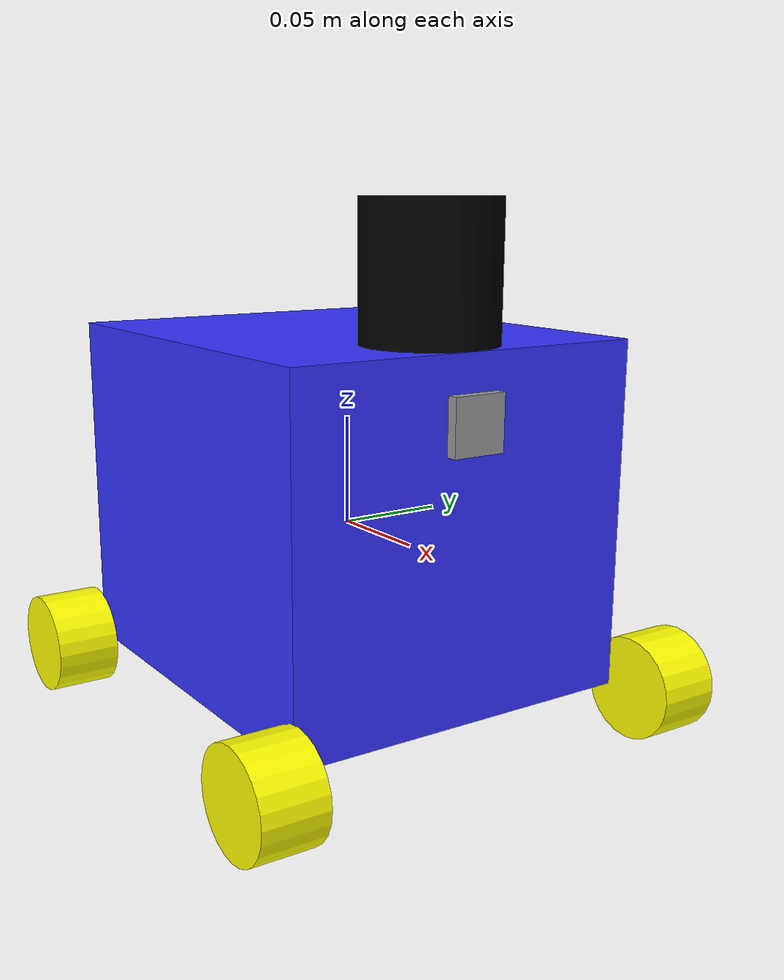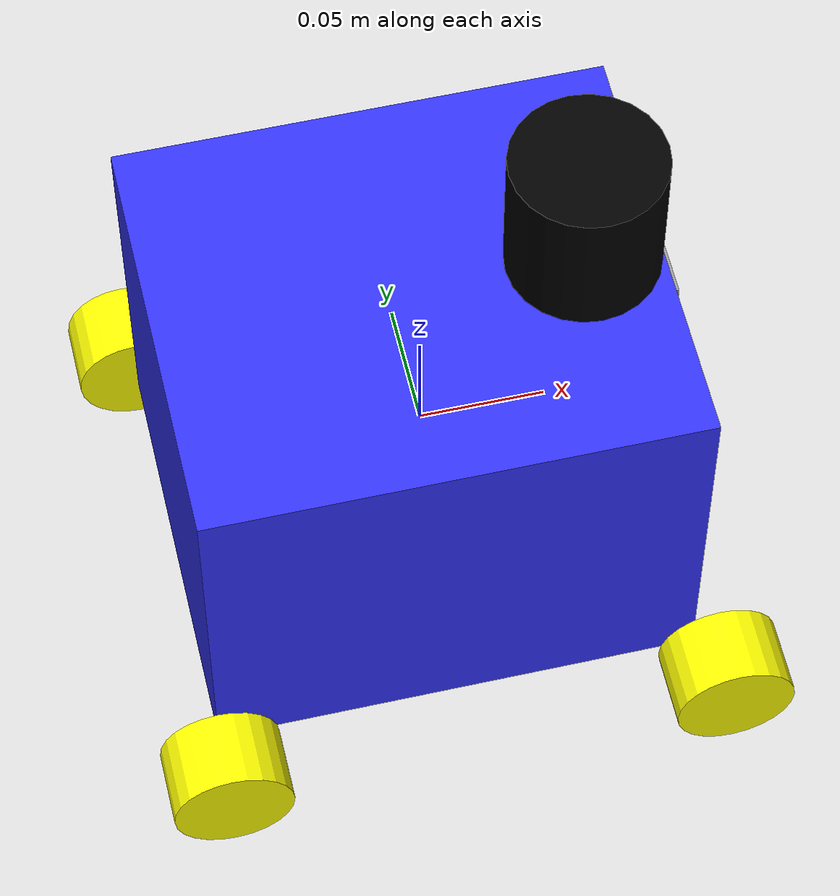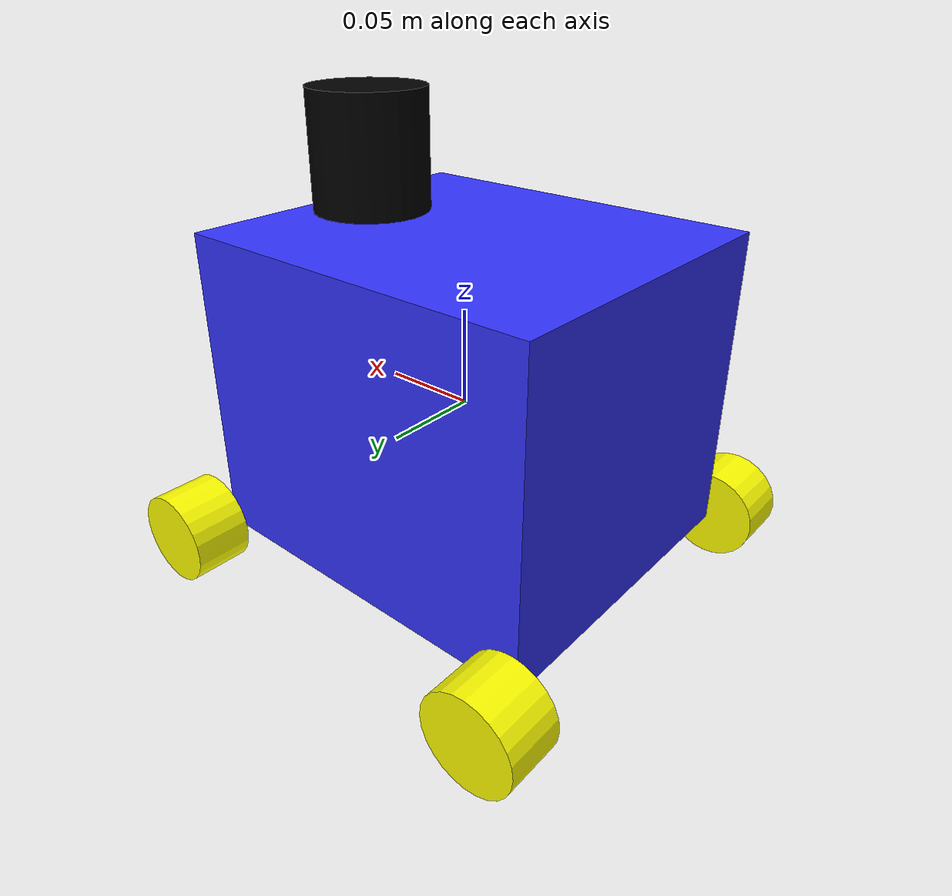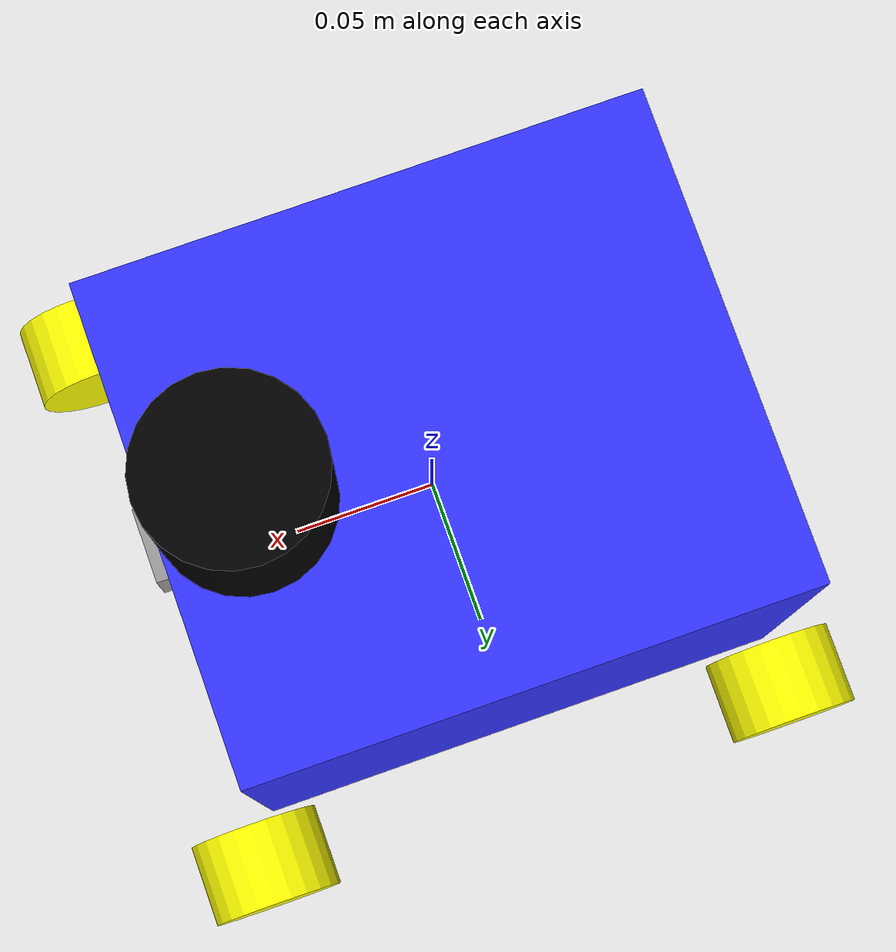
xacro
<?xml version="1.0"?>
<robot xmlns:xacro="http://www.ros.org/wiki/xacro"  name="robot">

    <xacro:arg name="use_ros2_control" default="true"/>
    <xacro:arg name="sim_mode" default="true"/>

    <xacro:include filename="robot_dimensions.xacro"/>
    <xacro:include filename="inertial_macros.xacro"/>

    <!--Robot Description Choice-->
    <xacro:if value="$(arg use_ros2_control)">
        <xacro:include filename="robot_core.xacro" />
    </xacro:if>
    <xacro:unless value="$(arg use_ros2_control)">
        <xacro:include filename="gazebo_robot_core.xacro" />
    </xacro:unless>

    <!--Controller Choice-->
    <xacro:if value="$(arg use_ros2_control)">
        <xacro:include filename="ros2_control.xacro" />
    </xacro:if>
    <xacro:unless value="$(arg use_ros2_control)">
        <xacro:include filename="gazebo_control.xacro" />
    </xacro:unless>

    <xacro:include filename="lidar.xacro" />

    <xacro:include filename="camera.xacro" />
</robot>

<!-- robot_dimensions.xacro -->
<robot xmlns:xacro="http://www.ros.org/wiki/xacro" >
    <!--constants to use for the robot dimensions-->
    <xacro:property name="chassis_length" value = ".194"/>
    <xacro:property name="chassis_width" value = ".17"/>
    <xacro:property name="chassis_height" value = ".16"/>
    <xacro:property name="chassis_mass" value = "1"/>

    <xacro:property name="wheel_radius" value = ".024"/>
    <xacro:property name="wheel_width" value = ".03"/>
    <xacro:property name="wheel_zoff" value = ".07"/>
    <xacro:property name="wheel_ygap" value = ".018"/>
    <xacro:property name="wheel_xoff" value = ".1015"/>
    <xacro:property name="wheel_mass" value = "1"/>

    <xacro:property name="support_height" value = ".203"/>
    <xacro:property name="support_radius" value = ".203"/>

    <xacro:property name="lidar_radius" value=".03"/>

    <!--constants to used for the robot sim colours-->
    <material name="white">
        <color rgba="1 1 1 1" />
    </material>

    <material name="orange">
        <color rgba="1 0.3 0.1 1"/>
    </material>

    <material name="blue">
        <color rgba="0.2 0.2 1 1"/>
    </material>

    <material name="black">
        <color rgba="0 0 0 1"/>
    </material>

</robot>

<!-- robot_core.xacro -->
<robot name="icarus_pi" xmlns:xacro="http://www.ros.org/wiki/xacro" >

    <!-- BASE LINK -->

    <link name="base_link">

    </link>

    <!-- BASE_FOOTPRINT LINK -->

    <joint name="base_footprint_joint" type="fixed">
        <parent link="base_link"/>
        <child link="base_footprint"/>
        <origin xyz="0 0 0" rpy="0 0 0"/>
    </joint>

    <link name="base_footprint">

    </link>

    <!-- CHASSIS LINK -->

    <joint name="chassis_joint" type="fixed">
        <parent link="base_link"/>
        <child link="chassis"/>
        <origin xyz="${-wheel_xoff} 0.0 ${-wheel_zoff}" rpy="0 0 0"/>
    </joint>

    <link name="chassis">
        <visual>
            <origin xyz="${chassis_length/2} 0 ${chassis_height/2}"/>
            <geometry>
                <box size="${chassis_length} ${chassis_width} ${chassis_height}"/>
            </geometry>
            <material name="blue"/>
        </visual>
        <collision>
            <origin xyz="${chassis_length/2} 0 ${chassis_height/2}"/>
            <geometry>
                <box size="${chassis_length} ${chassis_width} ${chassis_height}"/>
            </geometry>
        </collision>
        <xacro:inertial_box mass="${chassis_mass}" x="${chassis_length}" y="${chassis_width}" z="${chassis_height}">
            <origin xyz="${chassis_length/2} 0 ${chassis_height/2}" rpy="0 0 0"/>
        </xacro:inertial_box>
    </link>

    <gazebo reference="chassis">
        <material>Gazebo/Gray</material>
    </gazebo>

    <!-- wheels -->
	<xacro:macro name="wheel" params="prefix x_reflect y_reflect rotate">
        <joint name="${prefix}_joint" type="continuous">
            <parent link="base_link"/>
            <child link="${prefix}_link"/>
            <origin xyz="${x_reflect*wheel_xoff} ${y_reflect*(chassis_width/2 + wheel_ygap)} ${-wheel_zoff}" rpy="${y_reflect*-pi/2} 0 0"/>
            <axis xyz="0 0 ${y_reflect}"/>
        </joint>

        <link name ="${prefix}_link">
			<collision>
				<geometry>
					<cylinder radius="${wheel_radius}" length="${wheel_width}"/>
				</geometry>
			</collision>

            <xacro:inertial_cylinder mass="${wheel_mass}" length="${wheel_width}" radius="${wheel_radius}">
                <origin xyz="0 0 0" rpy="0 0 0"/>
            </xacro:inertial_cylinder>

			<visual>
				<geometry>
					<cylinder radius="${wheel_radius}" length="${wheel_width}"/>
				</geometry>
				<material name="Yellow">
					<color rgba="1 1 0 1"/>
				</material>
			</visual>
	    </link>
	</xacro:macro>

	<xacro:wheel prefix="backRight" x_reflect="-1" y_reflect="-1" rotate="${pi}"/>
	<xacro:wheel prefix="backLeft" x_reflect="-1" y_reflect="1" rotate="${pi}"/>
	<xacro:wheel prefix="frontRight" x_reflect="1" y_reflect="-1" rotate="${pi}"/>
	<xacro:wheel prefix="frontLeft" x_reflect="1" y_reflect="1" rotate="${pi}"/>

    <gazebo reference="backRight_link">
        <material>Gazebo/ZincYellow</material>
    </gazebo>

    <gazebo reference="backLeft_link">
        <material>Gazebo/ZincYellow</material>
    </gazebo>

    <gazebo reference="frontRight_link">
        <material>Gazebo/ZincYellow</material>
    </gazebo>

    <gazebo reference="frontLeft_link">
        <material>Gazebo/ZincYellow</material>
    </gazebo>

</robot>

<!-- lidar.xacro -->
<robot xmlns:xacro="http://www.ros.org/wiki/xacro" >

	<!--lidar intrinsics-->
	<link name="lidar_link">
		<inertial>
			<origin xyz = "0 0 0" rpy="0 0 0"/>
			<mass value=".17"/>
			<inertia ixx="0.001"  ixy="0"  ixz="0" iyy="0.001" iyz="0" izz="0.001"/>
		</inertial>

		<collision>
			<origin xyz = "0 0 0"/>
			<geometry>
				<cylinder radius="${lidar_radius}" length=".06"/>
			</geometry>
		</collision>

		<visual>
			<origin xyz = "0 0 0" rpy="0 0 0"/>
			<geometry>
				<cylinder radius="${lidar_radius}" length=".06"/>
			</geometry>
			<material name="black">
				<color rgba="0 0 0 1"/>
			</material>
		</visual>
	</link>

	<!--create the joint that the lidar_link will be bound to with the base being the base_link-->
	<joint name="lidar_joint" type="fixed">
	<!--^^make joint continuous to mimic spinning lidar?-->
		<parent link="chassis"/>
		<child link="lidar_link"/>
		<origin xyz="${chassis_length-lidar_radius} 0 ${chassis_height + 0.03}" rpy="0 0 ${pi}"/>
	</joint>

	<!--adding gazebo plugins to the sim-->
	<gazebo reference="lidar_link">
    	<material>Gazebo/Black</material>
		<sensor name="lidar" type="ray">
			<always_on>true</always_on>
			<visualize>true</visualize>
			<update_rate>5</update_rate>
			<ray>
				<scan>
					<horizontal>
						<samples>8000</samples>
						<resolution>1</resolution>
						<!--min and max angles are in radians-->
						<min_angle>0.0</min_angle>
						<max_angle>6.28</max_angle>
					</horizontal>
				</scan>
				<range>
					<min>0.12</min>
					<max>4</max>
					<resolution>1</resolution>
				</range>
				<noise>
					<type>gaussian</type>
					<mean>0.0</mean>
					<stddev>0.01</stddev>
				</noise>
			</ray>
			<plugin name="scan" filename="libgazebo_ros_ray_sensor.so">
				<ros>
					<remapping>~/out:=scan</remapping>
				</ros>
				<output_type>sensor_msgs/LaserScan</output_type>
				<frame_name>lidar_link</frame_name>
			</plugin>
		</sensor>
	</gazebo>
</robot>

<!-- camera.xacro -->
<robot xmlns:xacro="http://www.ros.org/wiki/xacro" >

    <joint name="camera_joint" type="fixed">
        <parent link="chassis"/>
        <child link="camera_link"/>
        <origin xyz="${chassis_length} 0 0.131" rpy="0 0 0"/>
    </joint>

    <link name="camera_link">
        <visual>
            <geometry>
                <box size="0.010 0.025 0.025"/>
            </geometry>
            <material name="grey"/>
        </visual>
    </link>

    <joint name="camera_optical_joint" type="fixed">
        <parent link="camera_link"/>
        <child link="camera_link_optical"/>
        <origin xyz="0 0 0" rpy="${-pi/2} 0 ${-pi/2}"/>
    </joint>

    <link name="camera_link_optical"></link>

    <gazebo reference="camera_link">
        <material>Gazebo/Grey</material>

        <sensor name="camera" type="camera">
            <pose> 0 0 0 0 0 0 </pose>
            <visualize>true</visualize>
            <update_rate>10</update_rate>
            <camera>
                <horizontal_fov>1.089</horizontal_fov>
                <image>
                    <format>R8G8B8</format>
                    <width>1280</width>
                    <height>720</height>
                </image>
                <clip>
                    <near>0.05</near>
                    <far>8.0</far>
                </clip>
            </camera>
            <plugin name="camera_controller" filename="libgazebo_ros_camera.so">
                <frame_name>camera_link_optical</frame_name>
            </plugin>
        </sensor>
    </gazebo>

</robot>
